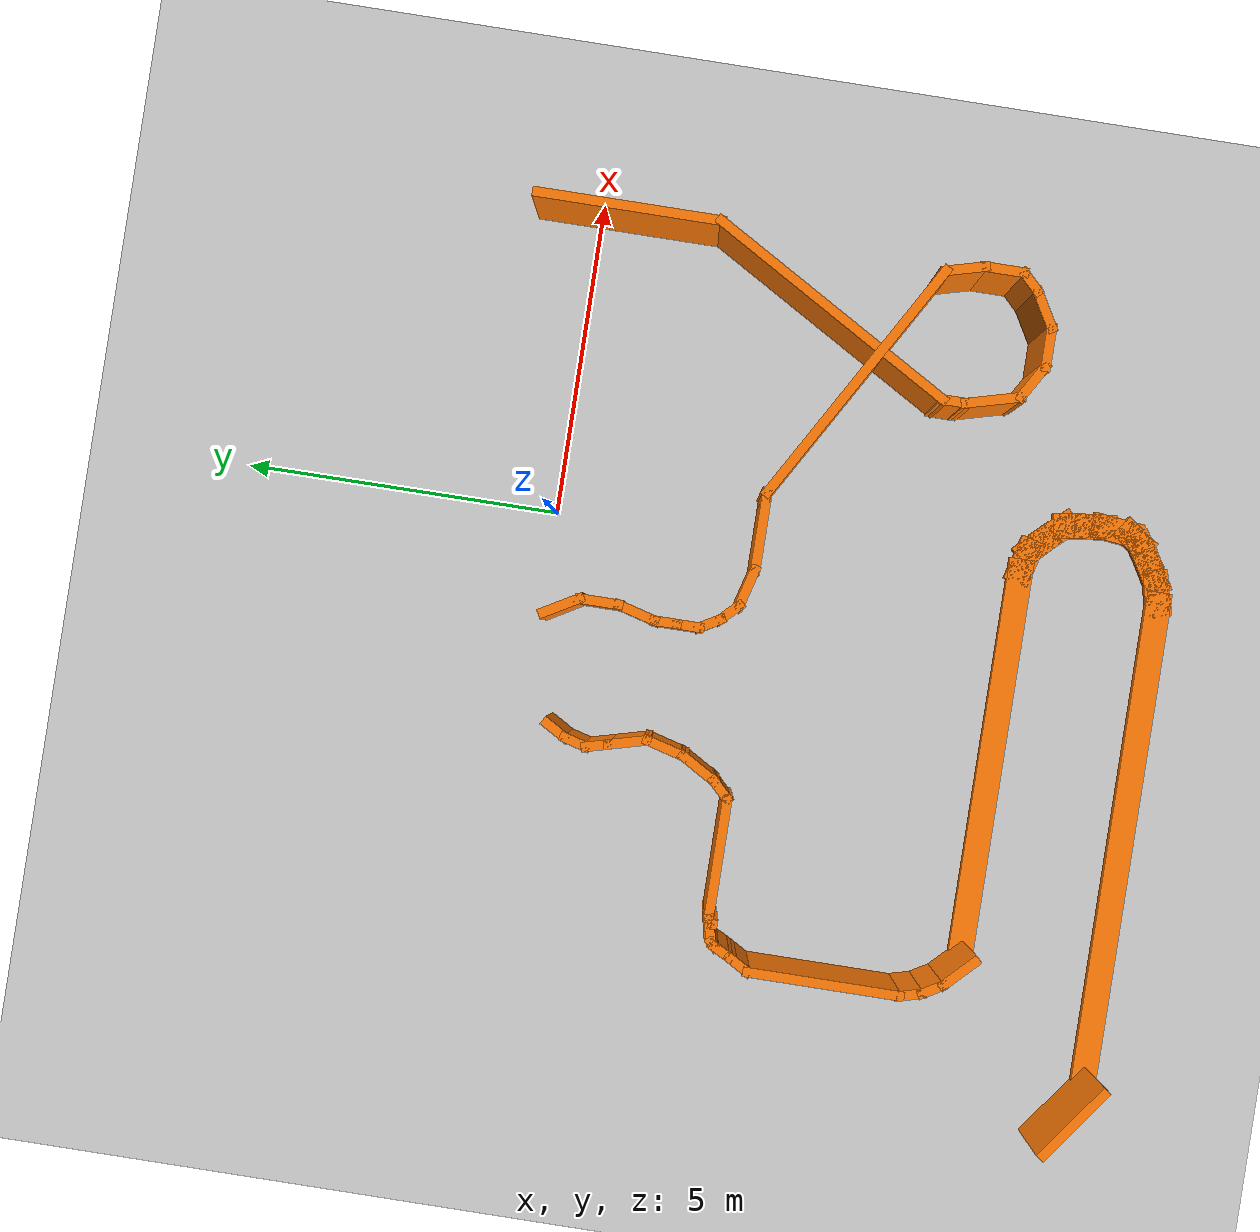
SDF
<sdf version="1.6">
 <world name="default">
  <model name="ground_plane">
   <static>1</static>
   <link name="link">
    <collision name="collision">
     <geometry><plane><normal>0 0 1</normal><size>100 100</size></plane></geometry>
     <surface>
      <contact><collide_bitmask>65535</collide_bitmask></contact>
      <friction><ode><mu>100</mu><mu2>50</mu2></ode></friction>
     </surface>
    </collision>
    <visual name="visual">
     <cast_shadows>0</cast_shadows>
     <geometry><plane><normal>0 0 1</normal><size>100 100</size></plane></geometry>
     <material>
      <script><uri>file://media/materials/scripts/gazebo.material</uri><name>Gazebo/Grey</name></script>
     </material>
    </visual>
   </link>
  </model>
  <model name="trace1">
   <pose>-1.95414 0.34627 0 0 -0 0</pose>
   <link name="Wall_0">
    <collision name="Wall_0_Collision">
     <geometry><box><size>8 0.4 0.2</size></box></geometry>
     <pose>0 0 0.1 0 -0 0</pose>
    </collision>
    <visual name="Wall_0_Visual">
     <pose>0 0 0.1 0 -0 0</pose>
     <geometry><box><size>8 0.4 0.2</size></box></geometry>
     <material>
      <script><uri>file://media/materials/scripts/gazebo.material</uri><name>Gazebo/Grey</name></script>
      <ambient>0.996078 0.47451 0.0196078 1</ambient>
     </material>
     <meta><layer>0</layer></meta>
    </visual>
    <pose>-1.79743 -10.1003 0 0 -0 0</pose>
   </link>
   <link name="Wall_1">
    <collision name="Wall_1_Collision">
     <geometry><box><size>0.7625 0.4 0.2</size></box></geometry>
     <pose>0 0 0.1 0 -0 0</pose>
    </collision>
    <visual name="Wall_1_Visual">
     <pose>0 0 0.1 0 -0 0</pose>
     <geometry><box><size>0.7625 0.4 0.2</size></box></geometry>
     <material>
      <script><uri>file://media/materials/scripts/gazebo.material</uri><name>Gazebo/Grey</name></script>
      <ambient>0.996078 0.47451 0.0196078 1</ambient>
     </material>
     <meta><layer>0</layer></meta>
    </visual>
    <pose>2.17157 -10.0553 0 0 -0 0.2509</pose>
   </link>
   <link name="Wall_10">
    <collision name="Wall_10_Collision">
     <geometry><box><size>0.750392 0.4 0.2</size></box></geometry>
     <pose>0 0 0.1 0 -0 0</pose>
    </collision>
    <visual name="Wall_10_Visual">
     <pose>0 0 0.1 0 -0 0</pose>
     <geometry><box><size>0.750392 0.4 0.2</size></box></geometry>
     <material>
      <script><uri>file://media/materials/scripts/gazebo.material</uri><name>Gazebo/Grey</name></script>
      <ambient>0.996078 0.47451 0.0196078 1</ambient>
     </material>
     <meta><layer>0</layer></meta>
    </visual>
    <pose>2.35714 -7.87877 0 0 -0 2.8786</pose>
   </link>
   <link name="Wall_109">
    <collision name="Wall_109_Collision">
     <geometry><box><size>1.47426 0.15 2.5</size></box></geometry>
     <pose>0 0 1.25 0 -0 0</pose>
    </collision>
    <visual name="Wall_109_Visual">
     <pose>0 0 1.25 0 -0 0</pose>
     <geometry><box><size>1.47426 0.15 2.5</size></box></geometry>
     <material>
      <script><uri>file://media/materials/scripts/gazebo.material</uri><name>Gazebo/Grey</name></script>
      <ambient>0.996078 0.47451 0.0196078 1</ambient>
     </material>
     <meta><layer>0</layer></meta>
    </visual>
    <pose>-6.13789 -9.70863 0 0 -0 -0.632894</pose>
   </link>
   <link name="Wall_11">
    <collision name="Wall_11_Collision">
     <geometry><box><size>6.5005 0.4 0.2</size></box></geometry>
     <pose>0 0 0.1 0 -0 0</pose>
    </collision>
    <visual name="Wall_11_Visual">
     <pose>0 0 0.1 0 -0 0</pose>
     <geometry><box><size>6.5005 0.4 0.2</size></box></geometry>
     <material>
      <script><uri>file://media/materials/scripts/gazebo.material</uri><name>Gazebo/Grey</name></script>
      <ambient>0.996078 0.47451 0.0196078 1</ambient>
     </material>
     <meta><layer>0</layer></meta>
    </visual>
    <pose>-0.861856 -7.83327 0 0 -0 3.14159</pose>
   </link>
   <link name="Wall_12">
    <collision name="Wall_12_Collision">
     <geometry><box><size>0.75 0.15 2.5</size></box></geometry>
     <pose>0 0 1.25 0 -0 0</pose>
    </collision>
    <visual name="Wall_12_Visual">
     <pose>0 0 1.25 0 -0 0</pose>
     <geometry><box><size>0.75 0.15 2.5</size></box></geometry>
     <material>
      <script><uri>file://media/materials/scripts/gazebo.material</uri><name>Gazebo/Grey</name></script>
      <ambient>0.996078 0.47451 0.0196078 1</ambient>
     </material>
     <meta><layer>0</layer></meta>
    </visual>
    <pose>-4.12424 -7.62138 0 0 -0 2.35735</pose>
   </link>
   <link name="Wall_13">
    <collision name="Wall_13_Collision">
     <geometry><box><size>0.5 0.15 2.5</size></box></geometry>
     <pose>0 0 1.25 0 -0 0</pose>
    </collision>
    <visual name="Wall_13_Visual">
     <pose>0 0 1.25 0 -0 0</pose>
     <geometry><box><size>0.5 0.15 2.5</size></box></geometry>
     <material>
      <script><uri>file://media/materials/scripts/gazebo.material</uri><name>Gazebo/Grey</name></script>
      <ambient>0.996078 0.47451 0.0196078 1</ambient>
     </material>
     <meta><layer>0</layer></meta>
    </visual>
    <pose>-4.42412 -7.25793 0 0 -0 2.0944</pose>
   </link>
   <link name="Wall_14">
    <collision name="Wall_14_Collision">
     <geometry><box><size>0.5 0.15 2.5</size></box></geometry>
     <pose>0 0 1.25 0 -0 0</pose>
    </collision>
    <visual name="Wall_14_Visual">
     <pose>0 0 1.25 0 -0 0</pose>
     <geometry><box><size>0.5 0.15 2.5</size></box></geometry>
     <material>
      <script><uri>file://media/materials/scripts/gazebo.material</uri><name>Gazebo/Grey</name></script>
      <ambient>0.996078 0.47451 0.0196078 1</ambient>
     </material>
     <meta><layer>0</layer></meta>
    </visual>
    <pose>-4.55691 -6.93734 0 0 -0 1.8326</pose>
   </link>
   <link name="Wall_15">
    <collision name="Wall_15_Collision">
     <geometry><box><size>2.5 0.15 2.5</size></box></geometry>
     <pose>0 0 1.25 0 -0 0</pose>
    </collision>
    <visual name="Wall_15_Visual">
     <pose>0 0 1.25 0 -0 0</pose>
     <geometry><box><size>2.5 0.15 2.5</size></box></geometry>
     <material>
      <script><uri>file://media/materials/scripts/gazebo.material</uri><name>Gazebo/Grey</name></script>
      <ambient>0.996078 0.47451 0.0196078 1</ambient>
     </material>
     <meta><layer>0</layer></meta>
    </visual>
    <pose>-4.6022 -5.5933 0 0 -0 1.5708</pose>
   </link>
   <link name="Wall_16">
    <collision name="Wall_16_Collision">
     <geometry><box><size>0.5 0.15 2.5</size></box></geometry>
     <pose>0 0 1.25 0 -0 0</pose>
    </collision>
    <visual name="Wall_16_Visual">
     <pose>0 0 1.25 0 -0 0</pose>
     <geometry><box><size>0.5 0.15 2.5</size></box></geometry>
     <material>
      <script><uri>file://media/materials/scripts/gazebo.material</uri><name>Gazebo/Grey</name></script>
      <ambient>0.996078 0.47451 0.0196078 1</ambient>
     </material>
     <meta><layer>0</layer></meta>
    </visual>
    <pose>-4.5147 -4.26675 0 0 -0 1.0472</pose>
   </link>
   <link name="Wall_17">
    <collision name="Wall_17_Collision">
     <geometry><box><size>0.42777 0.15 2.5</size></box></geometry>
     <pose>0 0 1.25 0 -0 0</pose>
    </collision>
    <visual name="Wall_17_Visual">
     <pose>0 0 1.25 0 -0 0</pose>
     <geometry><box><size>0.42777 0.15 2.5</size></box></geometry>
     <material>
      <script><uri>file://media/materials/scripts/gazebo.material</uri><name>Gazebo/Grey</name></script>
      <ambient>0.996078 0.47451 0.0196078 1</ambient>
     </material>
     <meta><layer>0</layer></meta>
    </visual>
    <pose>-4.36414 -3.99145 0 0 -0 1.09949</pose>
   </link>
   <link name="Wall_19">
    <collision name="Wall_19_Collision">
     <geometry><box><size>0.15 0.15 2.5</size></box></geometry>
     <pose>0 0 1.25 0 -0 0</pose>
    </collision>
    <visual name="Wall_19_Visual">
     <pose>0 0 1.25 0 -0 0</pose>
     <geometry><box><size>0.15 0.15 2.5</size></box></geometry>
     <material>
      <script><uri>file://media/materials/scripts/gazebo.material</uri><name>Gazebo/Grey</name></script>
      <ambient>0.996078 0.47451 0.0196078 1</ambient>
     </material>
     <meta><layer>0</layer></meta>
    </visual>
    <pose>-3.96301 -3.77712 0 0 -0 0</pose>
   </link>
   <link name="Wall_2">
    <collision name="Wall_2_Collision">
     <geometry><box><size>0.750772 0.4 0.2</size></box></geometry>
     <pose>0 0 0.1 0 -0 0</pose>
    </collision>
    <visual name="Wall_2_Visual">
     <pose>0 0 0.1 0 -0 0</pose>
     <geometry><box><size>0.750772 0.4 0.2</size></box></geometry>
     <material>
      <script><uri>file://media/materials/scripts/gazebo.material</uri><name>Gazebo/Grey</name></script>
      <ambient>0.996078 0.47451 0.0196078 1</ambient>
     </material>
     <meta><layer>0</layer></meta>
    </visual>
    <pose>2.49914 -9.92277 0 0 -0 0.522329</pose>
   </link>
   <link name="Wall_21">
    <collision name="Wall_21_Collision">
     <geometry><box><size>0.25 0.15 2.5</size></box></geometry>
     <pose>0 0 1.25 0 -0 0</pose>
    </collision>
    <visual name="Wall_21_Visual">
     <pose>0 0 1.25 0 -0 0</pose>
     <geometry><box><size>0.25 0.15 2.5</size></box></geometry>
     <material>
      <script><uri>file://media/materials/scripts/gazebo.material</uri><name>Gazebo/Grey</name></script>
      <ambient>0.996078 0.47451 0.0196078 1</ambient>
     </material>
     <meta><layer>0</layer></meta>
    </visual>
    <pose>-4.26573 -3.83235 0 0 -0 0.785398</pose>
   </link>
   <link name="Wall_22">
    <collision name="Wall_22_Collision">
     <geometry><box><size>0.5 0.15 2.5</size></box></geometry>
     <pose>0 0 1.25 0 -0 0</pose>
    </collision>
    <visual name="Wall_22_Visual">
     <pose>0 0 1.25 0 -0 0</pose>
     <geometry><box><size>0.5 0.15 2.5</size></box></geometry>
     <material>
      <script><uri>file://media/materials/scripts/gazebo.material</uri><name>Gazebo/Grey</name></script>
      <ambient>0.996078 0.47451 0.0196078 1</ambient>
     </material>
     <meta><layer>0</layer></meta>
    </visual>
    <pose>-4.06134 -3.7517 0 0 -0 0.261799</pose>
   </link>
   <link name="Wall_23">
    <collision name="Wall_23_Collision">
     <geometry><box><size>2 0.15 2.5</size></box></geometry>
     <pose>0 0 1.25 0 -0 0</pose>
    </collision>
    <visual name="Wall_23_Visual">
     <pose>0 0 1.25 0 -0 0</pose>
     <geometry><box><size>2 0.15 2.5</size></box></geometry>
     <material>
      <script><uri>file://media/materials/scripts/gazebo.material</uri><name>Gazebo/Grey</name></script>
      <ambient>0.996078 0.47451 0.0196078 1</ambient>
     </material>
     <meta><layer>0</layer></meta>
    </visual>
    <pose>-2.9673 -3.70641 0 0 -0 0</pose>
   </link>
   <link name="Wall_24">
    <collision name="Wall_24_Collision">
     <geometry><box><size>0.5 0.15 2.5</size></box></geometry>
     <pose>0 0 1.25 0 -0 0</pose>
    </collision>
    <visual name="Wall_24_Visual">
     <pose>0 0 1.25 0 -0 0</pose>
     <geometry><box><size>0.5 0.15 2.5</size></box></geometry>
     <material>
      <script><uri>file://media/materials/scripts/gazebo.material</uri><name>Gazebo/Grey</name></script>
      <ambient>0.996078 0.47451 0.0196078 1</ambient>
     </material>
     <meta><layer>0</layer></meta>
    </visual>
    <pose>-1.91856 -3.58266 0 0 -0 0.785398</pose>
   </link>
   <link name="Wall_25">
    <collision name="Wall_25_Collision">
     <geometry><box><size>0.75 0.15 2.5</size></box></geometry>
     <pose>0 0 1.25 0 -0 0</pose>
    </collision>
    <visual name="Wall_25_Visual">
     <pose>0 0 1.25 0 -0 0</pose>
     <geometry><box><size>0.75 0.15 2.5</size></box></geometry>
     <material>
      <script><uri>file://media/materials/scripts/gazebo.material</uri><name>Gazebo/Grey</name></script>
      <ambient>0.996078 0.47451 0.0196078 1</ambient>
     </material>
     <meta><layer>0</layer></meta>
    </visual>
    <pose>-1.64481 -3.19911 0 0 -0 1.0472</pose>
   </link>
   <link name="Wall_26">
    <collision name="Wall_26_Collision">
     <geometry><box><size>0.75 0.15 2.5</size></box></geometry>
     <pose>0 0 1.25 0 -0 0</pose>
    </collision>
    <visual name="Wall_26_Visual">
     <pose>0 0 1.25 0 -0 0</pose>
     <geometry><box><size>0.75 0.15 2.5</size></box></geometry>
     <material>
      <script><uri>file://media/materials/scripts/gazebo.material</uri><name>Gazebo/Grey</name></script>
      <ambient>0.996078 0.47451 0.0196078 1</ambient>
     </material>
     <meta><layer>0</layer></meta>
    </visual>
    <pose>-1.41717 -2.64953 0 0 -0 1.309</pose>
   </link>
   <link name="Wall_27">
    <collision name="Wall_27_Collision">
     <geometry><box><size>0.75 0.15 2.5</size></box></geometry>
     <pose>0 0 1.25 0 -0 0</pose>
    </collision>
    <visual name="Wall_27_Visual">
     <pose>0 0 1.25 0 -0 0</pose>
     <geometry><box><size>0.75 0.15 2.5</size></box></geometry>
     <material>
      <script><uri>file://media/materials/scripts/gazebo.material</uri><name>Gazebo/Grey</name></script>
      <ambient>0.996078 0.47451 0.0196078 1</ambient>
     </material>
     <meta><layer>0</layer></meta>
    </visual>
    <pose>-1.41717 -2.06997 0 0 -0 1.8326</pose>
   </link>
   <link name="Wall_28">
    <collision name="Wall_28_Collision">
     <geometry><box><size>0.5 0.15 2.5</size></box></geometry>
     <pose>0 0 1.25 0 -0 0</pose>
    </collision>
    <visual name="Wall_28_Visual">
     <pose>0 0 1.25 0 -0 0</pose>
     <geometry><box><size>0.5 0.15 2.5</size></box></geometry>
     <material>
      <script><uri>file://media/materials/scripts/gazebo.material</uri><name>Gazebo/Grey</name></script>
      <ambient>0.996078 0.47451 0.0196078 1</ambient>
     </material>
     <meta><layer>0</layer></meta>
    </visual>
    <pose>-1.5401 -1.61116 0 0 -0 1.8326</pose>
   </link>
   <link name="Wall_29">
    <collision name="Wall_29_Collision">
     <geometry><box><size>0.5 0.15 2.5</size></box></geometry>
     <pose>0 0 1.25 0 -0 0</pose>
    </collision>
    <visual name="Wall_29_Visual">
     <pose>0 0 1.25 0 -0 0</pose>
     <geometry><box><size>0.5 0.15 2.5</size></box></geometry>
     <material>
      <script><uri>file://media/materials/scripts/gazebo.material</uri><name>Gazebo/Grey</name></script>
      <ambient>0.996078 0.47451 0.0196078 1</ambient>
     </material>
     <meta><layer>0</layer></meta>
    </visual>
    <pose>-1.5401 -1.27308 0 0 -0 1.309</pose>
   </link>
   <link name="Wall_3">
    <collision name="Wall_3_Collision">
     <geometry><box><size>0.701188 0.4 0.2</size></box></geometry>
     <pose>0 0 0.1 0 -0 0</pose>
    </collision>
    <visual name="Wall_3_Visual">
     <pose>0 0 0.1 0 -0 0</pose>
     <geometry><box><size>0.701188 0.4 0.2</size></box></geometry>
     <material>
      <script><uri>file://media/materials/scripts/gazebo.material</uri><name>Gazebo/Grey</name></script>
      <ambient>0.996078 0.47451 0.0196078 1</ambient>
     </material>
     <meta><layer>0</layer></meta>
    </visual>
    <pose>2.77793 -9.75401 0 0 -0 0.56997</pose>
   </link>
   <link name="Wall_30">
    <collision name="Wall_30_Collision">
     <geometry><box><size>0.5 0.15 2.5</size></box></geometry>
     <pose>0 0 1.25 0 -0 0</pose>
    </collision>
    <visual name="Wall_30_Visual">
     <pose>0 0 1.25 0 -0 0</pose>
     <geometry><box><size>0.5 0.15 2.5</size></box></geometry>
     <material>
      <script><uri>file://media/materials/scripts/gazebo.material</uri><name>Gazebo/Grey</name></script>
      <ambient>0.996078 0.47451 0.0196078 1</ambient>
     </material>
     <meta><layer>0</layer></meta>
    </visual>
    <pose>-1.40731 -0.952492 0 0 -0 1.0472</pose>
   </link>
   <link name="Wall_35">
    <collision name="Wall_35_Collision">
     <geometry><box><size>0.75 0.15 2.5</size></box></geometry>
     <pose>0 0 1.25 0 -0 0</pose>
    </collision>
    <visual name="Wall_35_Visual">
     <pose>0 0 1.25 0 -0 0</pose>
     <geometry><box><size>0.75 0.15 2.5</size></box></geometry>
     <material>
      <script><uri>file://media/materials/scripts/gazebo.material</uri><name>Gazebo/Grey</name></script>
      <ambient>0.996078 0.47451 0.0196078 1</ambient>
     </material>
     <meta><layer>0</layer></meta>
    </visual>
    <pose>0.487853 -0.737928 0 0 -0 -1.0472</pose>
   </link>
   <link name="Wall_36">
    <collision name="Wall_36_Collision">
     <geometry><box><size>0.75 0.15 2.5</size></box></geometry>
     <pose>0 0 1.25 0 -0 0</pose>
    </collision>
    <visual name="Wall_36_Visual">
     <pose>0 0 1.25 0 -0 0</pose>
     <geometry><box><size>0.75 0.15 2.5</size></box></geometry>
     <material>
      <script><uri>file://media/materials/scripts/gazebo.material</uri><name>Gazebo/Grey</name></script>
      <ambient>0.996078 0.47451 0.0196078 1</ambient>
     </material>
     <meta><layer>0</layer></meta>
    </visual>
    <pose>0.637853 -1.29774 0 0 -0 -1.5708</pose>
   </link>
   <link name="Wall_37">
    <collision name="Wall_37_Collision">
     <geometry><box><size>0.75 0.15 2.5</size></box></geometry>
     <pose>0 0 1.25 0 -0 0</pose>
    </collision>
    <visual name="Wall_37_Visual">
     <pose>0 0 1.25 0 -0 0</pose>
     <geometry><box><size>0.75 0.15 2.5</size></box></geometry>
     <material>
      <script><uri>file://media/materials/scripts/gazebo.material</uri><name>Gazebo/Grey</name></script>
      <ambient>0.996078 0.47451 0.0196078 1</ambient>
     </material>
     <meta><layer>0</layer></meta>
    </visual>
    <pose>0.560208 -1.88751 0 0 -0 -1.8326</pose>
   </link>
   <link name="Wall_38">
    <collision name="Wall_38_Collision">
     <geometry><box><size>0.5 0.15 2.5</size></box></geometry>
     <pose>0 0 1.25 0 -0 0</pose>
    </collision>
    <visual name="Wall_38_Visual">
     <pose>0 0 1.25 0 -0 0</pose>
     <geometry><box><size>0.5 0.15 2.5</size></box></geometry>
     <material>
      <script><uri>file://media/materials/scripts/gazebo.material</uri><name>Gazebo/Grey</name></script>
      <ambient>0.996078 0.47451 0.0196078 1</ambient>
     </material>
     <meta><layer>0</layer></meta>
    </visual>
    <pose>0.482562 -2.35229 0 0 -0 -1.5708</pose>
   </link>
   <link name="Wall_39">
    <collision name="Wall_39_Collision">
     <geometry><box><size>0.5 0.15 2.5</size></box></geometry>
     <pose>0 0 1.25 0 -0 0</pose>
    </collision>
    <visual name="Wall_39_Visual">
     <pose>0 0 1.25 0 -0 0</pose>
     <geometry><box><size>0.5 0.15 2.5</size></box></geometry>
     <material>
      <script><uri>file://media/materials/scripts/gazebo.material</uri><name>Gazebo/Grey</name></script>
      <ambient>0.996078 0.47451 0.0196078 1</ambient>
     </material>
     <meta><layer>0</layer></meta>
    </visual>
    <pose>0.482562 -2.70229 0 0 -0 -1.5708</pose>
   </link>
   <link name="Wall_4">
    <collision name="Wall_4_Collision">
     <geometry><box><size>0.634449 0.4 0.2</size></box></geometry>
     <pose>0 0 0.1 0 -0 0</pose>
    </collision>
    <visual name="Wall_4_Visual">
     <pose>0 0 0.1 0 -0 0</pose>
     <geometry><box><size>0.634449 0.4 0.2</size></box></geometry>
     <material>
      <script><uri>file://media/materials/scripts/gazebo.material</uri><name>Gazebo/Grey</name></script>
      <ambient>0.996078 0.47451 0.0196078 1</ambient>
     </material>
     <meta><layer>0</layer></meta>
    </visual>
    <pose>2.97879 -9.57691 0 0 -0 0.95719</pose>
   </link>
   <link name="Wall_40">
    <collision name="Wall_40_Collision">
     <geometry><box><size>0.5 0.15 2.5</size></box></geometry>
     <pose>0 0 1.25 0 -0 0</pose>
    </collision>
    <visual name="Wall_40_Visual">
     <pose>0 0 1.25 0 -0 0</pose>
     <geometry><box><size>0.5 0.15 2.5</size></box></geometry>
     <material>
      <script><uri>file://media/materials/scripts/gazebo.material</uri><name>Gazebo/Grey</name></script>
      <ambient>0.996078 0.47451 0.0196078 1</ambient>
     </material>
     <meta><layer>0</layer></meta>
    </visual>
    <pose>0.570062 -3.02885 0 0 -0 -1.0472</pose>
   </link>
   <link name="Wall_41">
    <collision name="Wall_41_Collision">
     <geometry><box><size>0.5 0.15 2.5</size></box></geometry>
     <pose>0 0 1.25 0 -0 0</pose>
    </collision>
    <visual name="Wall_41_Visual">
     <pose>0 0 1.25 0 -0 0</pose>
     <geometry><box><size>0.5 0.15 2.5</size></box></geometry>
     <material>
      <script><uri>file://media/materials/scripts/gazebo.material</uri><name>Gazebo/Grey</name></script>
      <ambient>0.996078 0.47451 0.0196078 1</ambient>
     </material>
     <meta><layer>0</layer></meta>
    </visual>
    <pose>0.781306 -3.30414 0 0 -0 -0.785398</pose>
   </link>
   <link name="Wall_42">
    <collision name="Wall_42_Collision">
     <geometry><box><size>0.75 0.15 2.5</size></box></geometry>
     <pose>0 0 1.25 0 -0 0</pose>
    </collision>
    <visual name="Wall_42_Visual">
     <pose>0 0 1.25 0 -0 0</pose>
     <geometry><box><size>0.75 0.15 2.5</size></box></geometry>
     <material>
      <script><uri>file://media/materials/scripts/gazebo.material</uri><name>Gazebo/Grey</name></script>
      <ambient>0.996078 0.47451 0.0196078 1</ambient>
     </material>
     <meta><layer>0</layer></meta>
    </visual>
    <pose>1.19483 -3.50553 0 0 -0 -0.261799</pose>
   </link>
   <link name="Wall_43">
    <collision name="Wall_43_Collision">
     <geometry><box><size>1.25 0.15 2.5</size></box></geometry>
     <pose>0 0 1.25 0 -0 0</pose>
    </collision>
    <visual name="Wall_43_Visual">
     <pose>0 0 1.25 0 -0 0</pose>
     <geometry><box><size>1.25 0.15 2.5</size></box></geometry>
     <material>
      <script><uri>file://media/materials/scripts/gazebo.material</uri><name>Gazebo/Grey</name></script>
      <ambient>0.996078 0.47451 0.0196078 1</ambient>
     </material>
     <meta><layer>0</layer></meta>
    </visual>
    <pose>2.0346 -3.58318 0 0 -0 0</pose>
   </link>
   <link name="Wall_44">
    <collision name="Wall_44_Collision">
     <geometry><box><size>0.25 0.15 2.5</size></box></geometry>
     <pose>0 0 1.25 0 -0 0</pose>
    </collision>
    <visual name="Wall_44_Visual">
     <pose>0 0 1.25 0 -0 0</pose>
     <geometry><box><size>0.25 0.15 2.5</size></box></geometry>
     <material>
      <script><uri>file://media/materials/scripts/gazebo.material</uri><name>Gazebo/Grey</name></script>
      <ambient>0.996078 0.47451 0.0196078 1</ambient>
     </material>
     <meta><layer>0</layer></meta>
    </visual>
    <pose>2.63461 -3.58318 0 0 -0 0</pose>
   </link>
   <link name="Wall_45">
    <collision name="Wall_45_Collision">
     <geometry><box><size>4.5 0.15 2.5</size></box></geometry>
     <pose>0 0 1.25 0 -0 0</pose>
    </collision>
    <visual name="Wall_45_Visual">
     <pose>0 0 1.25 0 -0 0</pose>
     <geometry><box><size>4.5 0.15 2.5</size></box></geometry>
     <material>
      <script><uri>file://media/materials/scripts/gazebo.material</uri><name>Gazebo/Grey</name></script>
      <ambient>0.996078 0.47451 0.0196078 1</ambient>
     </material>
     <meta><layer>0</layer></meta>
    </visual>
    <pose>4.56821 -4.67068 0 0 -0 -0.523599</pose>
   </link>
   <link name="Wall_46">
    <collision name="Wall_46_Collision">
     <geometry><box><size>0.75 0.15 2.5</size></box></geometry>
     <pose>0 0 1.25 0 -0 0</pose>
    </collision>
    <visual name="Wall_46_Visual">
     <pose>0 0 1.25 0 -0 0</pose>
     <geometry><box><size>0.75 0.15 2.5</size></box></geometry>
     <material>
      <script><uri>file://media/materials/scripts/gazebo.material</uri><name>Gazebo/Grey</name></script>
      <ambient>0.996078 0.47451 0.0196078 1</ambient>
     </material>
     <meta><layer>0</layer></meta>
    </visual>
    <pose>6.52946 -6.04796 0 0 -0 -1.309</pose>
   </link>
   <link name="Wall_47">
    <collision name="Wall_47_Collision">
     <geometry><box><size>0.75 0.15 2.5</size></box></geometry>
     <pose>0 0 1.25 0 -0 0</pose>
    </collision>
    <visual name="Wall_47_Visual">
     <pose>0 0 1.25 0 -0 0</pose>
     <geometry><box><size>0.75 0.15 2.5</size></box></geometry>
     <material>
      <script><uri>file://media/materials/scripts/gazebo.material</uri><name>Gazebo/Grey</name></script>
      <ambient>0.996078 0.47451 0.0196078 1</ambient>
     </material>
     <meta><layer>0</layer></meta>
    </visual>
    <pose>6.60711 -6.63773 0 0 -0 -1.5708</pose>
   </link>
   <link name="Wall_48">
    <collision name="Wall_48_Collision">
     <geometry><box><size>0.5 0.15 2.5</size></box></geometry>
     <pose>0 0 1.25 0 -0 0</pose>
    </collision>
    <visual name="Wall_48_Visual">
     <pose>0 0 1.25 0 -0 0</pose>
     <geometry><box><size>0.5 0.15 2.5</size></box></geometry>
     <material>
      <script><uri>file://media/materials/scripts/gazebo.material</uri><name>Gazebo/Grey</name></script>
      <ambient>0.996078 0.47451 0.0196078 1</ambient>
     </material>
     <meta><layer>0</layer></meta>
    </visual>
    <pose>6.48336 -7.06148 0 0 -0 -2.35619</pose>
   </link>
   <link name="Wall_49">
    <collision name="Wall_49_Collision">
     <geometry><box><size>0.75 0.15 2.5</size></box></geometry>
     <pose>0 0 1.25 0 -0 0</pose>
    </collision>
    <visual name="Wall_49_Visual">
     <pose>0 0 1.25 0 -0 0</pose>
     <geometry><box><size>0.75 0.15 2.5</size></box></geometry>
     <material>
      <script><uri>file://media/materials/scripts/gazebo.material</uri><name>Gazebo/Grey</name></script>
      <ambient>0.996078 0.47451 0.0196078 1</ambient>
     </material>
     <meta><layer>0</layer></meta>
    </visual>
    <pose>6.09981 -7.33522 0 0 -0 -2.61799</pose>
   </link>
   <link name="Wall_5">
    <collision name="Wall_5_Collision">
     <geometry><box><size>0.831973 0.4 0.2</size></box></geometry>
     <pose>0 0 0.1 0 -0 0</pose>
    </collision>
    <visual name="Wall_5_Visual">
     <pose>0 0 0.1 0 -0 0</pose>
     <geometry><box><size>0.831973 0.4 0.2</size></box></geometry>
     <material>
      <script><uri>file://media/materials/scripts/gazebo.material</uri><name>Gazebo/Grey</name></script>
      <ambient>0.996078 0.47451 0.0196078 1</ambient>
     </material>
     <meta><layer>0</layer></meta>
    </visual>
    <pose>3.07559 -9.26628 0 0 -0 1.46538</pose>
   </link>
   <link name="Wall_50">
    <collision name="Wall_50_Collision">
     <geometry><box><size>0.75 0.15 2.5</size></box></geometry>
     <pose>0 0 1.25 0 -0 0</pose>
    </collision>
    <visual name="Wall_50_Visual">
     <pose>0 0 1.25 0 -0 0</pose>
     <geometry><box><size>0.75 0.15 2.5</size></box></geometry>
     <material>
      <script><uri>file://media/materials/scripts/gazebo.material</uri><name>Gazebo/Grey</name></script>
      <ambient>0.996078 0.47451 0.0196078 1</ambient>
     </material>
     <meta><layer>0</layer></meta>
    </visual>
    <pose>5.54 -7.48522 0 0 -0 3.14159</pose>
   </link>
   <link name="Wall_53">
    <collision name="Wall_53_Collision">
     <geometry><box><size>0.75 0.15 2.5</size></box></geometry>
     <pose>0 0 1.25 0 -0 0</pose>
    </collision>
    <visual name="Wall_53_Visual">
     <pose>0 0 1.25 0 -0 0</pose>
     <geometry><box><size>0.75 0.15 2.5</size></box></geometry>
     <material>
      <script><uri>file://media/materials/scripts/gazebo.material</uri><name>Gazebo/Grey</name></script>
      <ambient>0.996078 0.47451 0.0196078 1</ambient>
     </material>
     <meta><layer>0</layer></meta>
    </visual>
    <pose>4.9802 -7.33522 0 0 -0 2.61799</pose>
   </link>
   <link name="Wall_54">
    <collision name="Wall_54_Collision">
     <geometry><box><size>1 0.15 2.5</size></box></geometry>
     <pose>0 0 1.25 0 -0 0</pose>
    </collision>
    <visual name="Wall_54_Visual">
     <pose>0 0 1.25 0 -0 0</pose>
     <geometry><box><size>1 0.15 2.5</size></box></geometry>
     <material>
      <script><uri>file://media/materials/scripts/gazebo.material</uri><name>Gazebo/Grey</name></script>
      <ambient>0.996078 0.47451 0.0196078 1</ambient>
     </material>
     <meta><layer>0</layer></meta>
    </visual>
    <pose>4.61039 -6.7747 0 0 -0 1.8326</pose>
   </link>
   <link name="Wall_55">
    <collision name="Wall_55_Collision">
     <geometry><box><size>0.5 0.15 2.5</size></box></geometry>
     <pose>0 0 1.25 0 -0 0</pose>
    </collision>
    <visual name="Wall_55_Visual">
     <pose>0 0 1.25 0 -0 0</pose>
     <geometry><box><size>0.5 0.15 2.5</size></box></geometry>
     <material>
      <script><uri>file://media/materials/scripts/gazebo.material</uri><name>Gazebo/Grey</name></script>
      <ambient>0.996078 0.47451 0.0196078 1</ambient>
     </material>
     <meta><layer>0</layer></meta>
    </visual>
    <pose>4.50039 -6.18918 0 0 -0 1.5708</pose>
   </link>
   <link name="Wall_56">
    <collision name="Wall_56_Collision">
     <geometry><box><size>4.5 0.15 2.5</size></box></geometry>
     <pose>0 0 1.25 0 -0 0</pose>
    </collision>
    <visual name="Wall_56_Visual">
     <pose>0 0 1.25 0 -0 0</pose>
     <geometry><box><size>4.5 0.15 2.5</size></box></geometry>
     <material>
      <script><uri>file://media/materials/scripts/gazebo.material</uri><name>Gazebo/Grey</name></script>
      <ambient>0.996078 0.47451 0.0196078 1</ambient>
     </material>
     <meta><layer>0</layer></meta>
    </visual>
    <pose>5.58789 -4.13058 0 0 -0 1.0472</pose>
   </link>
   <link name="Wall_57">
    <collision name="Wall_57_Collision">
     <geometry><box><size>3 0.15 2.5</size></box></geometry>
     <pose>0 0 1.25 0 -0 0</pose>
    </collision>
    <visual name="Wall_57_Visual">
     <pose>0 0 1.25 0 -0 0</pose>
     <geometry><box><size>3 0.15 2.5</size></box></geometry>
     <material>
      <script><uri>file://media/materials/scripts/gazebo.material</uri><name>Gazebo/Grey</name></script>
      <ambient>0.996078 0.47451 0.0196078 1</ambient>
     </material>
     <meta><layer>0</layer></meta>
    </visual>
    <pose>6.67539 -0.821974 0 0 -0 1.5708</pose>
   </link>
   <link name="Wall_6">
    <collision name="Wall_6_Collision">
     <geometry><box><size>0.678373 0.4 0.2</size></box></geometry>
     <pose>0 0 0.1 0 -0 0</pose>
    </collision>
    <visual name="Wall_6_Visual">
     <pose>0 0 0.1 0 -0 0</pose>
     <geometry><box><size>0.678373 0.4 0.2</size></box></geometry>
     <material>
      <script><uri>file://media/materials/scripts/gazebo.material</uri><name>Gazebo/Grey</name></script>
      <ambient>0.996078 0.47451 0.0196078 1</ambient>
     </material>
     <meta><layer>0</layer></meta>
    </visual>
    <pose>3.07844 -8.91288 0 0 -0 1.66646</pose>
   </link>
   <link name="Wall_7">
    <collision name="Wall_7_Collision">
     <geometry><box><size>0.741974 0.4 0.2</size></box></geometry>
     <pose>0 0 0.1 0 -0 0</pose>
    </collision>
    <visual name="Wall_7_Visual">
     <pose>0 0 0.1 0 -0 0</pose>
     <geometry><box><size>0.741974 0.4 0.2</size></box></geometry>
     <material>
      <script><uri>file://media/materials/scripts/gazebo.material</uri><name>Gazebo/Grey</name></script>
      <ambient>0.996078 0.47451 0.0196078 1</ambient>
     </material>
     <meta><layer>0</layer></meta>
    </visual>
    <pose>3.04264 -8.60477 0 0 -0 1.70277</pose>
   </link>
   <link name="Wall_8">
    <collision name="Wall_8_Collision">
     <geometry><box><size>0.765909 0.4 0.2</size></box></geometry>
     <pose>0 0 0.1 0 -0 0</pose>
    </collision>
    <visual name="Wall_8_Visual">
     <pose>0 0 0.1 0 -0 0</pose>
     <geometry><box><size>0.765909 0.4 0.2</size></box></geometry>
     <material>
      <script><uri>file://media/materials/scripts/gazebo.material</uri><name>Gazebo/Grey</name></script>
      <ambient>0.996078 0.47451 0.0196078 1</ambient>
     </material>
     <meta><layer>0</layer></meta>
    </visual>
    <pose>2.89664 -8.30027 0 0 -0 2.31174</pose>
   </link>
   <link name="Wall_9">
    <collision name="Wall_9_Collision">
     <geometry><box><size>0.745352 0.4 0.2</size></box></geometry>
     <pose>0 0 0.1 0 -0 0</pose>
    </collision>
    <visual name="Wall_9_Visual">
     <pose>0 0 0.1 0 -0 0</pose>
     <geometry><box><size>0.745352 0.4 0.2</size></box></geometry>
     <material>
      <script><uri>file://media/materials/scripts/gazebo.material</uri><name>Gazebo/Grey</name></script>
      <ambient>0.996078 0.47451 0.0196078 1</ambient>
     </material>
     <meta><layer>0</layer></meta>
    </visual>
    <pose>2.64964 -8.04477 0 0 -0 2.36849</pose>
   </link>
   <static>1</static>
  </model>
 </world>
</sdf>
